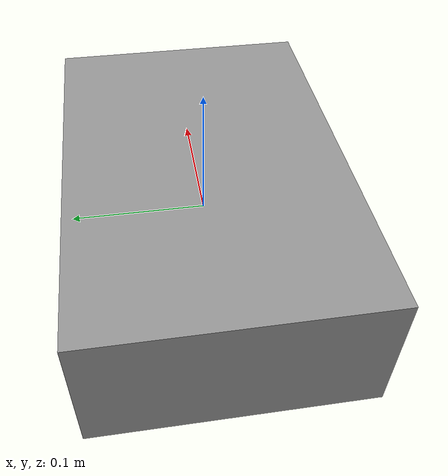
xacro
<?xml version="1.0"?>
<robot name="humanoid_template" xmlns:xacro="http://ros.org/wiki/xacro">
  <!-- Minimal humanoid template: base_link, torso, head, two legs -->

  <link name="base_link">
    <inertial>
      <mass value="10.0"/>
      <origin xyz="0 0 0"/>
      <inertia ixx="0.1" ixy="0.0" ixz="0.0" iyy="0.1" iyz="0.0" izz="0.1"/>
    </inertial>
    <visual>
      <geometry>
        <box size="0.3 0.2 0.1" />
      </geometry>
      <material name="gray"/>
    </visual>
    <collision>
      <geometry>
        <box size="0.3 0.2 0.1" />
      </geometry>
    </collision>
  </link>

  <link name="torso"/>
  <joint name="base_to_torso" type="fixed">
    <parent link="base_link"/>
    <child link="torso"/>
    <origin xyz="0 0 0.5" rpy="0 0 0"/>
  </joint>

  <link name="head"/>
  <joint name="torso_to_head" type="revolute">
    <parent link="torso"/>
    <child link="head"/>
    <origin xyz="0 0 0.25" rpy="0 0 0"/>
    <axis xyz="0 0 1"/>
    <limit lower="-1.57" upper="1.57" effort="5" velocity="1.0"/>
  </joint>

  <!-- Left leg -->
  <link name="left_upper_leg"/>
  <joint name="torso_to_left_upper_leg" type="revolute">
    <parent link="torso"/>
    <child link="left_upper_leg"/>
    <origin xyz="0.05 0.08 -0.3" rpy="0 0 0"/>
    <axis xyz="1 0 0"/>
    <limit lower="-1.2" upper="1.2" effort="50" velocity="2.0"/>
  </joint>
  <link name="left_lower_leg"/>
  <joint name="left_knee" type="revolute">
    <parent link="left_upper_leg"/>
    <child link="left_lower_leg"/>
    <origin xyz="0 0 -0.3" rpy="0 0 0"/>
    <axis xyz="1 0 0"/>
    <limit lower="0" upper="2.0" effort="50" velocity="2.0"/>
  </joint>

  <!-- Right leg -->
  <link name="right_upper_leg"/>
  <joint name="torso_to_right_upper_leg" type="revolute">
    <parent link="torso"/>
    <child link="right_upper_leg"/>
    <origin xyz="-0.05 0.08 -0.3" rpy="0 0 0"/>
    <axis xyz="1 0 0"/>
    <limit lower="-1.2" upper="1.2" effort="50" velocity="2.0"/>
  </joint>
  <link name="right_lower_leg"/>
  <joint name="right_knee" type="revolute">
    <parent link="right_upper_leg"/>
    <child link="right_lower_leg"/>
    <origin xyz="0 0 -0.3" rpy="0 0 0"/>
    <axis xyz="1 0 0"/>
    <limit lower="0" upper="2.0" effort="50" velocity="2.0"/>
  </joint>

  <!-- Simple sensors placeholder -->
  <gazebo reference="head">
    <sensor type="camera" name="head_camera">
      <always_on>true</always_on>
      <visualize>false</visualize>
    </sensor>
  </gazebo>

</robot>
